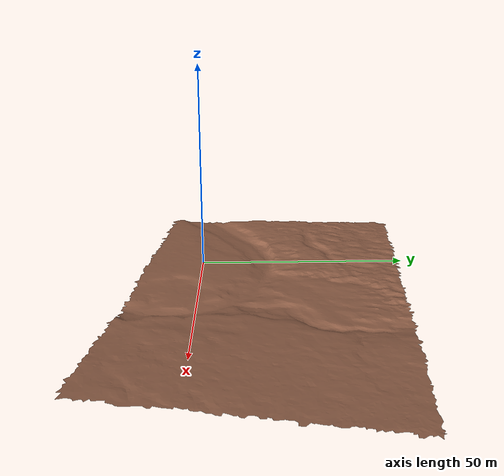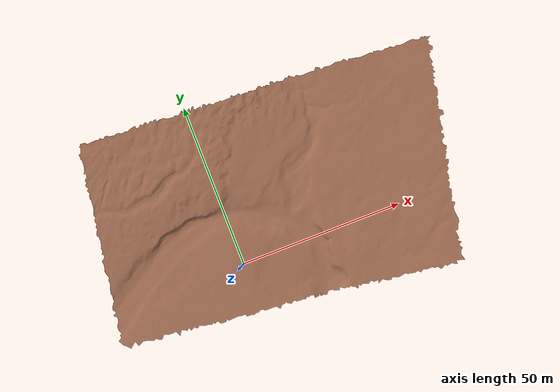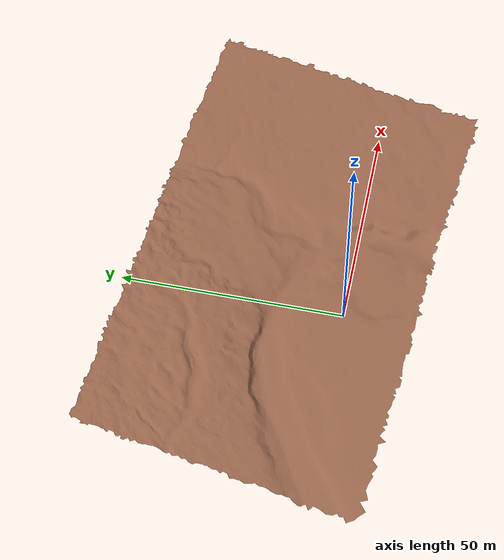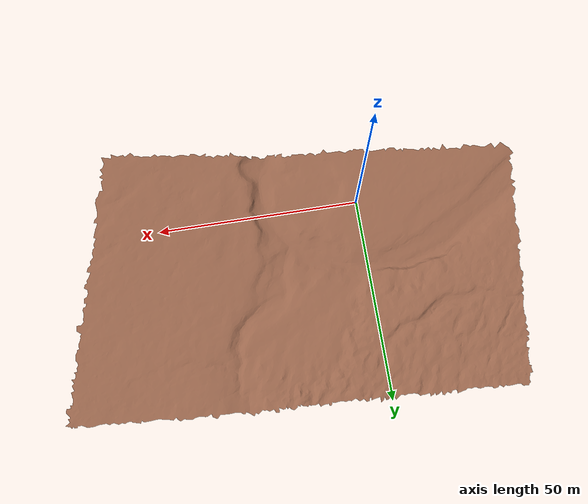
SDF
<?xml version="1.0" ?>
<sdf version="1.8">
  <world name="mars_terrain">

    <!-- Physics -->
    <physics name="default_physics" type="ode">
      <max_step_size>0.0005</max_step_size>
      <real_time_factor>1.0</real_time_factor>
      <real_time_update_rate>250</real_time_update_rate>
    </physics>

    <!-- Required Fortress plugins -->
    <plugin filename="ignition-gazebo-physics-system"
            name="ignition::gazebo::systems::Physics"/>
    <plugin filename="ignition-gazebo-user-commands-system"
            name="ignition::gazebo::systems::UserCommands"/>
    <plugin filename="ignition-gazebo-scene-broadcaster-system"
            name="ignition::gazebo::systems::SceneBroadcaster"/>
    <plugin filename="ignition-gazebo-sensors-system"
            name="ignition::gazebo::systems::Sensors">
      <render_engine>ogre</render_engine>
    </plugin>

    <!-- Sun / lighting -->
    <light name="sun" type="directional">
      <cast_shadows>true</cast_shadows>
      <pose>0 0 10 0 0 0</pose>
      <diffuse>0.8 0.8 0.8 1</diffuse>
      <specular>0.2 0.2 0.2 1</specular>
      <direction>-0.5 0.1 -0.9</direction>
    </light>

    <!-- Terrain mesh model -->
    <model name="terrain">
      <static>true</static>
      <pose>50 -50 -5 0 0 0</pose>
      <link name="terrain_link">
        <collision name="terrain_collision">
          <geometry>
            <mesh>
              <!-- Replace with your mesh path -->
              <uri>/home/flashing/ws/src/urdf_description/worlds/meshes/sea_coast.stl</uri>
              <scale>1 1 1</scale>
            </mesh>
          </geometry>
          <surface>
            <friction>
              <ode>
                <mu>0.8</mu>
                <mu2>0.8</mu2>
              </ode>
            </friction>
          </surface>
        </collision>
        <visual name="terrain_visual">
          <geometry>
            <mesh>
              <!-- Replace with your mesh path -->
              <uri>/home/flashing/ws/src/urdf_description/worlds/meshes/sea_coast.stl</uri>
              <scale>1 1 1</scale>
            </mesh>
          </geometry>
          <material>
            <ambient>0.6 0.4 0.3 1</ambient>
            <diffuse>0.6 0.4 0.3 1</diffuse>
            <specular>0.1 0.1 0.1 1</specular>
          </material>
        </visual>
      </link>
    </model>

  </world>
</sdf>
